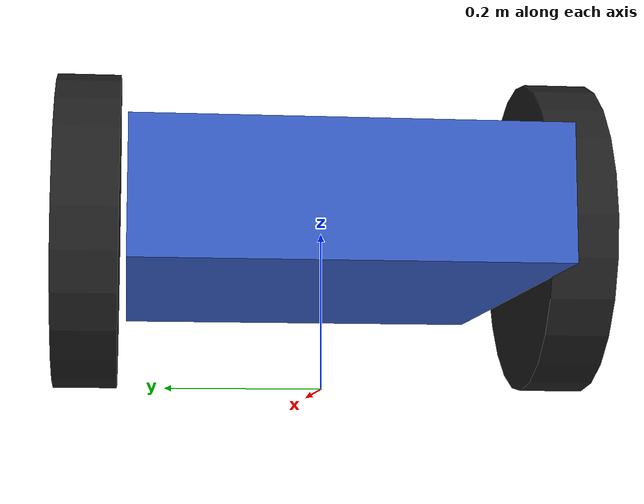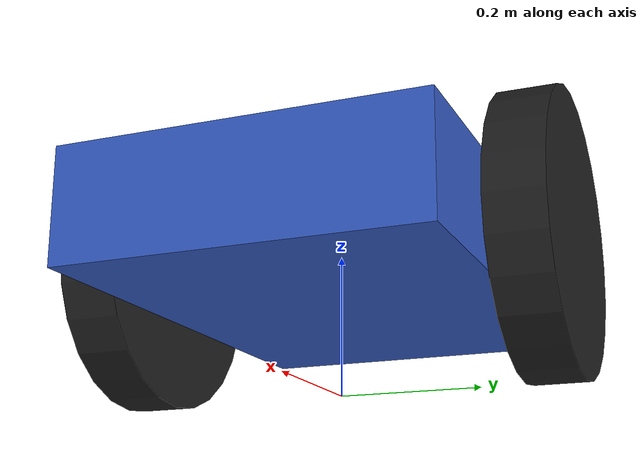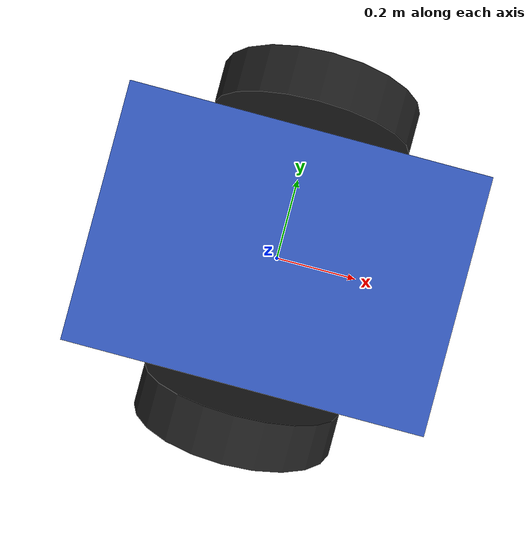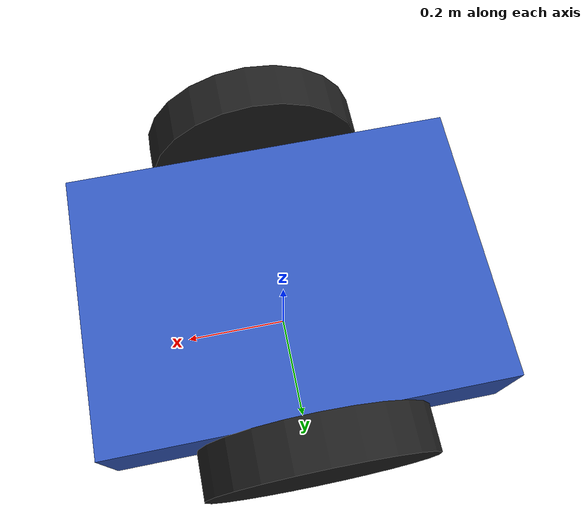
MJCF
<mujoco model="rolling_diff">
  <compiler angle="radian" inertiafromgeom="false"/>
  <option timestep="0.001" gravity="0 0 -9.81" integrator="implicitfast" cone="pyramidal" jacobian="dense"/>
  <size memory="32M"/>
  <default>
    <joint damping="0.05" armature="0.001"/>
    <geom condim="4" friction="0.8 0.01 0.001" solref="0.005 1" solimp="0.9 0.95 0.001"/>
  </default>
  <worldbody>
    <body name="chassis" pos="0 0 0.2">
      <freejoint name="root"/>
      <inertial pos="0 0 -0.08" mass="10" diaginertia="0.32 0.50 0.62"/>
      <geom name="chassis_visual" type="box" size="0.35 0.25 0.08" contype="0" conaffinity="0"
            rgba="0.2 0.35 0.75 1"/>
      <geom name="chassis_collision" type="box" size="0.32 0.22 0.07" rgba="0.2 0.35 0.75 0"/>
      <body name="left_wheel" pos="0 0.3 0">
        <joint name="left_drive" type="hinge" axis="0 1 0" limited="false"/>
        <inertial pos="0 0 0" mass="1" diaginertia="0.021 0.040 0.021"/>
        <geom name="left_wheel_collision" type="cylinder" size="0.2 0.04"
              quat="0.7071067811865476 0.7071067811865476 0 0" rgba="0.12 0.12 0.12 1"/>
      </body>
      <body name="right_wheel" pos="0 -0.3 0">
        <joint name="right_drive" type="hinge" axis="0 1 0" limited="false"/>
        <inertial pos="0 0 0" mass="1" diaginertia="0.021 0.040 0.021"/>
        <geom name="right_wheel_collision" type="cylinder" size="0.2 0.04"
              quat="0.7071067811865476 0.7071067811865476 0 0" rgba="0.12 0.12 0.12 1"/>
      </body>
    </body>
  </worldbody>
  <actuator>
    <motor name="left_motor" joint="left_drive" gear="1" ctrllimited="true" ctrlrange="-35 35"/>
    <motor name="right_motor" joint="right_drive" gear="1" ctrllimited="true" ctrlrange="-35 35"/>
  </actuator>
</mujoco>
